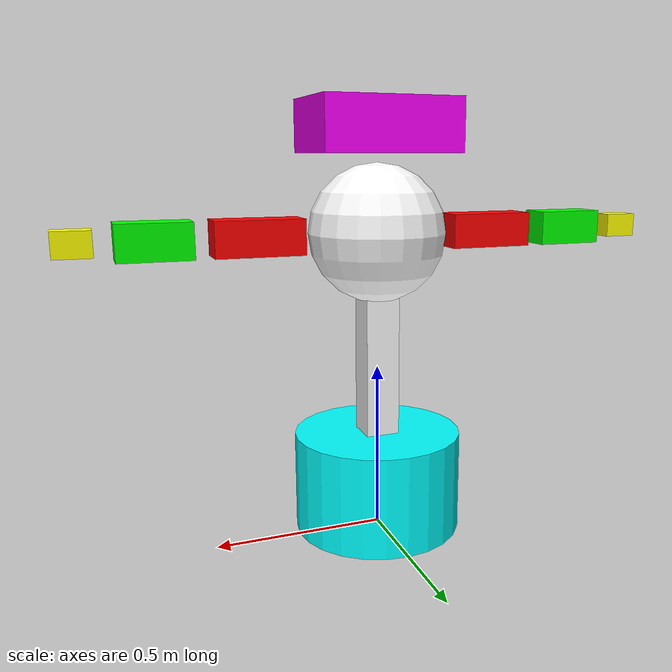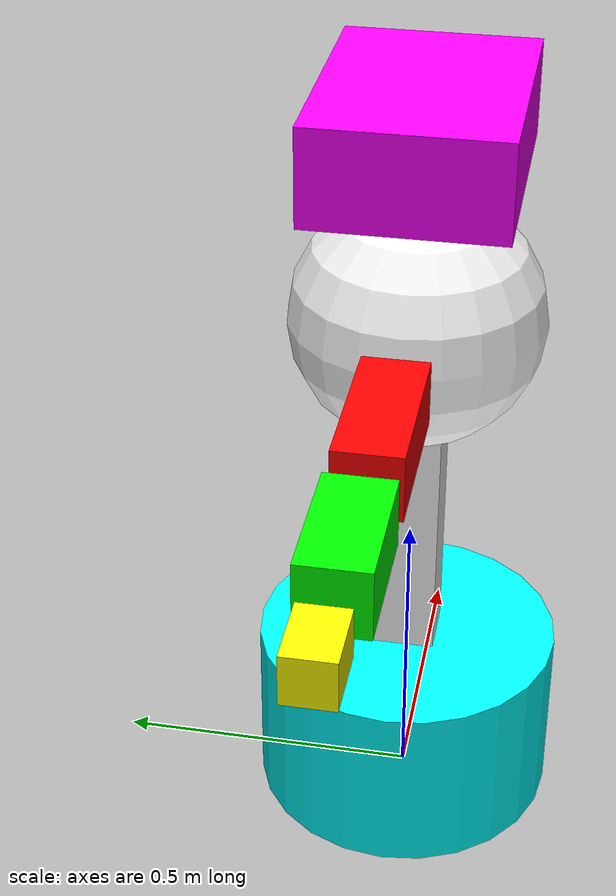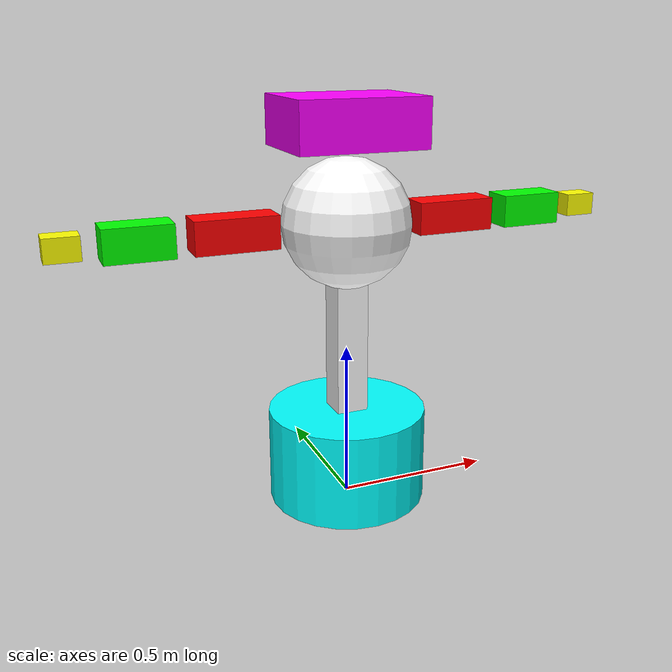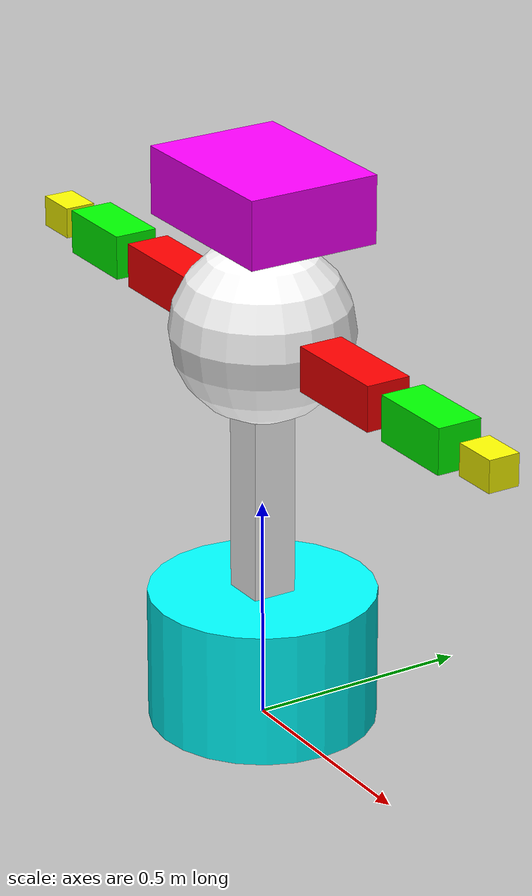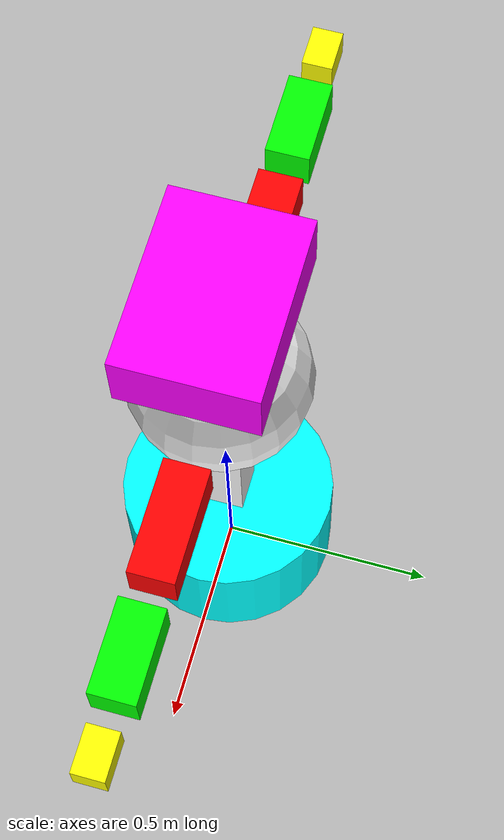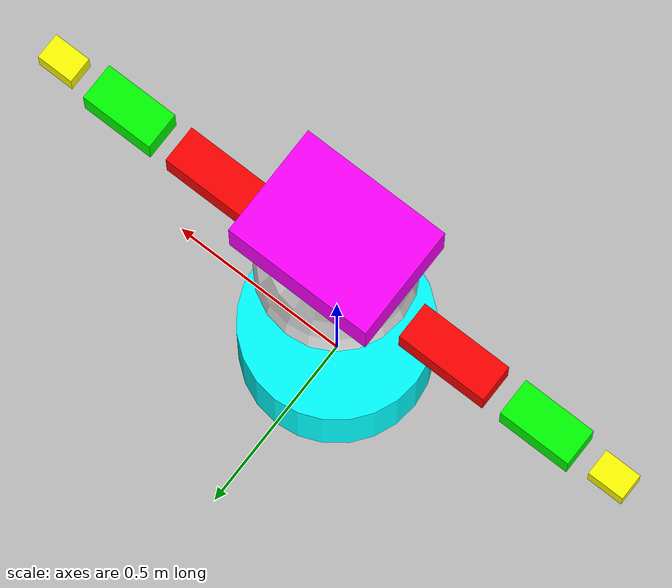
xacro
<?xml version="1.0"?>
<robot xmlns:xacro="http://www.ros.org/wiki/xacro" name="mobman">
    <xacro:property name="base_size_width" value="0.5" />
    <xacro:property name="base_size_z" value="0.3" />
    <xacro:property name="body_size_z" value="0.4" />
    <xacro:property name="body_size_width" value="0.1" />
    <xacro:property name="chest_size" value="0.4" />
    <xacro:property name="head_size_x" value="0.4" />
    <xacro:property name="head_size_y" value="0.3" />
    <xacro:property name="head_size_z" value="0.2" />
    <xacro:property name="armUp_height" value="0." />
    <xacro:property name="armUp_length" value="0.3" />
    <xacro:property name="armUp_width" value="0.1" />
    <xacro:property name="armDown_length" value="0.25" />
    <xacro:property name="armDown_width" value="0.1" />
    <xacro:property name="hand_length" value="0.15" />
    <xacro:property name="hand_width" value="0.07" />
    <xacro:property name="gap" value="0.025" />

    <link name="base">
    <visual>
        <geometry>
            <cylinder radius="${base_size_width/2}" length="${base_size_z}" />
        </geometry>
        <origin xyz ="0 0 ${base_size_z/2}" />
        <material name="yello">
            <color rgba="0 1 1 1"/>
        </material>
    </visual>
    </link>
    <link name="body">
    <visual>
        <geometry>
            <box size="${body_size_width} ${body_size_width} ${body_size_z+gap}" />
        </geometry>
        <origin xyz ="0 0 ${body_size_z/2}" />
        <material name="white">
            <color rgba="1 1 1 1"/>
        </material>
    </visual>
    </link>
    <link name="chest">
        <visual>
            <geometry>
                <sphere radius="${chest_size/2}"/>
            </geometry>
            <origin xyz ="0 0 0" />
            <material name="white">
                <color rgba="1 1 1 1"/>
            </material>
        </visual>
    </link>

    <link name="head_x" />
    <link name="head_z" >
        <visual>
            <geometry>
                <box size="${head_size_x} ${head_size_y} ${head_size_z-gap*2}" />
            </geometry>
            <origin xyz ="0 0 ${head_size_z/2}" />
            <material name="blue">
                <color rgba="1 0 1 1"/>
            </material>
        </visual>
    </link>
    <link name="leftArmUp_x" />
    <link name="leftArmUp_y" />
    <link name="leftArmUp_z" >
    <visual>
        <geometry>
            <box size="${armUp_width} ${armUp_width} ${armUp_length-gap*2}" />
        </geometry>
        <origin xyz ="0 0 ${armUp_length/2}" />
        <material name="red">
            <color rgba="1 0 0 1"/>
        </material>
    </visual>
    </link>
    <link name="leftArmDown_x" />
    <link name="leftArmDown_z" >
    <visual>
        <geometry>
            <box size="${armDown_width} ${armDown_width} ${armDown_length-gap*2}" />
        </geometry>
        <origin xyz ="0 0 ${armDown_length/2}" />
        <material name="green">
            <color rgba="0 1 0 1"/>
        </material>
    </visual>
    </link>
    <link name="leftHand" >
    <visual>
        <geometry>
            <box size="${hand_width} ${hand_width} ${hand_length-gap*2}" />
        </geometry>
        <origin xyz ="0 0 ${hand_length/2}" />
        <material name="hand">
            <color rgba="1 1 0 1"/>
        </material>
    </visual>
    </link>
    <link name="rightArmUp_x" />
    <link name="rightArmUp_y" />
    <link name="rightArmUp_z" >
    <visual>
        <geometry>
            <box size="${armUp_width} ${armUp_width} ${armUp_length-gap*2}" />
        </geometry>
        <origin xyz ="0 0 ${armUp_length/2}" />
        <material name="red">
            <color rgba="1 0 0 1"/>
        </material>
    </visual>
    </link>
    <link name="rightArmDown_x" />
    <link name="rightArmDown_z" >
    <visual>
        <geometry>
            <box size="${armDown_width} ${armDown_width} ${armDown_length-gap*2}" />
        </geometry>
        <origin xyz ="0 0 ${armDown_length/2}" />
        <material name="green">
            <color rgba="0 1 0 1"/>
        </material>
    </visual>
    </link>
    <link name="rightHand" >
    <visual>
        <geometry>
            <box size="${hand_width} ${hand_width} ${hand_length-gap*2}" />
        </geometry>
        <origin xyz ="0 0 ${hand_length/2}" />
        <material name="hand">
            <color rgba="1 1 0 1"/>
        </material>
    </visual>
    </link>

    <joint name="joint_body" type="fixed">
        <parent link="base" />
        <child link="body" />
        <origin xyz="0 0 ${base_size_z}" rpy="0 0 0"/>
    </joint>
    <joint name="joint_chest" type="fixed">
        <parent link="body" />
        <child link="chest" />
        <origin xyz=" 0 0 ${body_size_z+chest_size/2}" rpy="0 0 0"/>
    </joint>

    <joint name="joint_head_x" type="continuous">
        <parent link="chest"/>
        <child link="head_x"/>
        <origin xyz="0 0 ${chest_size/2}" rpy="0 0 0" />
        <axis xyz="1 0 0" />
    </joint>
    <joint name="joint_head_z" type="continuous">
        <parent link="head_x"/>
        <child link="head_z"/>
        <origin xyz="0 0 0" rpy="0 0 0" />
        <axis xyz="0 0 1" />
    </joint>
    <joint name="joint_leftArmUp_x" type="continuous">
        <parent link="chest"/>
        <child link="leftArmUp_x"/>
        <origin xyz="${chest_size/2} 0 ${armUp_height}" rpy="0 1.57 0" />
        <axis xyz="1 0 0" />
    </joint>
    <joint name="joint_leftArmUp_y" type="continuous">
        <parent link="leftArmUp_x"/>
        <child link="leftArmUp_y"/>
        <origin xyz="0 0 0" rpy="0 0 0" />
        <axis xyz="0 1 0" />
    </joint>
    <joint name="joint_leftArmUp_z" type="continuous">
        <parent link="leftArmUp_y"/>
        <child link="leftArmUp_z"/>
        <origin xyz="0 0 0" rpy="0 0 0" />
        <axis xyz="0 0 1" />
    </joint>

    <joint name="joint_leftArmDown_x" type="continuous">
        <parent link="leftArmUp_z"/>
        <child link="leftArmDown_x"/>
        <origin xyz="0 0 ${armUp_length}" rpy="0 0 0" />
        <axis xyz="1 0 0" />
    </joint>
    <joint name="joint_leftArmDown_z" type="continuous">
        <parent link="leftArmDown_x"/>
        <child link="leftArmDown_z"/>
        <origin xyz="0 0 0" rpy="0 0 0" />
        <axis xyz="0 0 1" />
    </joint>

    <joint name="joint_leftHand_x" type="continuous">
        <parent link="leftArmDown_z"/>
        <child link="leftHand"/>
        <origin xyz="0 0 ${armDown_length}" rpy="0 0 0" />
        <axis xyz="1 0 0" />
    </joint>

    <joint name="joint_rightArmUp_x" type="continuous">
        <parent link="chest"/>
        <child link="rightArmUp_x"/>
        <origin xyz="${-chest_size/2} 0 ${armUp_height}" rpy="0 -1.57 0" />
        <axis xyz="1 0 0" />
    </joint>
    <joint name="joint_rightArmUp_y" type="continuous">
        <parent link="rightArmUp_x"/>
        <child link="rightArmUp_y"/>
        <origin xyz="0 0 0" rpy="0 0 0" />
        <axis xyz="0 1 0" />
    </joint>
    <joint name="joint_rightArmUp_z" type="continuous">
        <parent link="rightArmUp_y"/>
        <child link="rightArmUp_z"/>
        <origin xyz="0 0 0" rpy="0 0 0" />
        <axis xyz="0 0 1" />
    </joint>

    <joint name="joint_rightArmDown_x" type="continuous">
        <parent link="rightArmUp_z"/>
        <child link="rightArmDown_x"/>
        <origin xyz="0 0 ${armUp_length}" rpy="0 0 0" />
        <axis xyz="1 0 0" />
    </joint>
    <joint name="joint_rightArmDown_z" type="continuous">
        <parent link="rightArmDown_x"/>
        <child link="rightArmDown_z"/>
        <origin xyz="0 0 0" rpy="0 0 0" />
        <axis xyz="0 0 1" />
    </joint>

    <joint name="joint_rightHand_x" type="continuous">
        <parent link="rightArmDown_z"/>
        <child link="rightHand"/>
        <origin xyz="0 0 ${armDown_length}" rpy="0 0 0" />
        <axis xyz="1 0 0" />
    </joint>
</robot>
